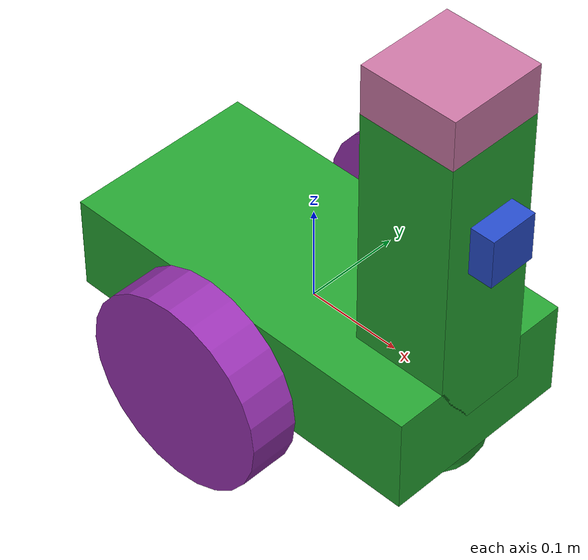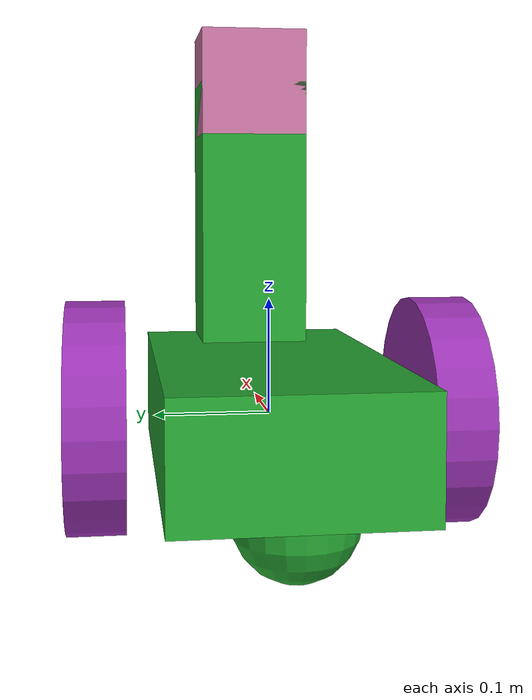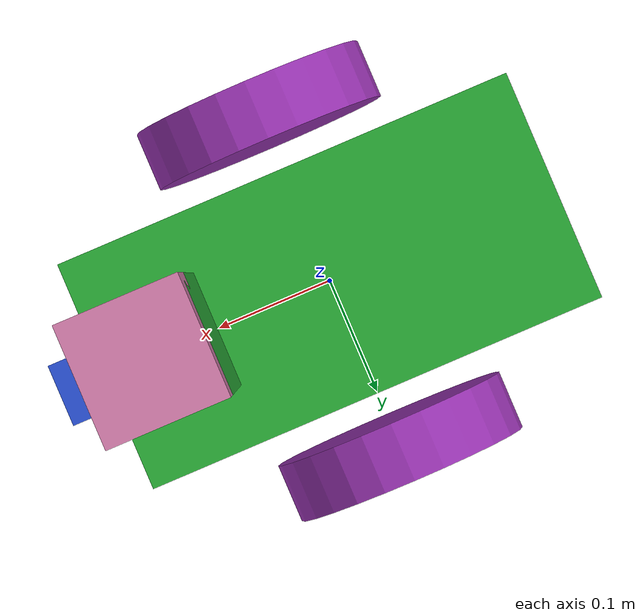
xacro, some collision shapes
<?xml version='1.0'?>

<robot name="weiwei_bot" xmlns:xacro="http://www.ros.org/wiki/xacro">

  <xacro:include filename="$(find weiwei_bot)/urdf/weiwei_bot.gazebo" />

  <link name="robot_footprint"></link>

  <joint name="robot_footprint_joint" type="fixed">
    <origin xyz="0 0 0" rpy="0 0 0" />
    <parent link="robot_footprint"/>
    <child link="chassis" />
  </joint>

  <link name='chassis'>
    <pose>0 0 0.1 0 0 0</pose>

    <inertial>
      <mass value="15.0"/>
      <origin xyz="0.0 0 0" rpy=" 0 0 0"/>
      <inertia
          ixx="0.1" ixy="0" ixz="0"
          iyy="0.1" iyz="0"
          izz="0.1"
      />
    </inertial>

    <collision name='collision'>
      <origin xyz="0 0 0" rpy=" 0 0 0"/>
      <geometry>
        <box size=".4 .2 .1"/>
      </geometry>
    </collision>

    <visual name='chassis_visual'>
      <origin xyz="0 0 0" rpy=" 0 0 0"/>
      <geometry>
        <box size=".4 .2 .1"/>
      </geometry>
    </visual>

    <collision name='back_caster_collision'>
      <origin xyz="-0.15 0 -0.05" rpy=" 0 0 0"/>
      <geometry>
        <sphere radius="0.05"/>
      </geometry>
      <surface>
        <friction>
          <ode>
            <mu>0</mu>
            <mu2>0</mu2>
            <slip1>1.0</slip1>
            <slip2>1.0</slip2>
          </ode>
        </friction>
      </surface>
    </collision>

    <visual name='back_caster_visual'>
      <origin xyz="-0.15 0 -0.05" rpy=" 0 0 0"/>
      <geometry>
        <sphere radius="0.05"/>
      </geometry>
    </visual>

    <collision name='front_caster_collision'>
      <origin xyz="0.15 0 -0.05" rpy=" 0 0 0"/>
      <geometry>
        <sphere radius="0.05"/>
      </geometry>
      <surface>
        <friction>
          <ode>
            <mu>0</mu>
            <mu2>0</mu2>
            <slip1>1.0</slip1>
            <slip2>1.0</slip2>
          </ode>
        </friction>
      </surface>
    </collision>

    <visual name='front_caster_visual'>
      <origin xyz="0.15 0 -0.05" rpy=" 0 0 0"/>
      <geometry>
        <sphere radius="0.05"/>
      </geometry>
    </visual>

  </link>

  <link name='face' type="fixed">
    <pose>0 0 0.1 0 0 0</pose>

    <inertial>
      <mass value="1.0"/>
      <origin xyz="0.0 0 0" rpy=" 0 0 0"/>
      <inertia
          ixx="0.1" ixy="0" ixz="0"
          iyy="0.1" iyz="0"
          izz="0.1"
      />
    </inertial>

    <collision name='face_collision'>
      <origin xyz="0.15 0 0.15" rpy=" 0 0 0"/>
      <geometry>
        <box size=".1 .1 .3"/>
      </geometry>
    </collision>

    <visual name='face_visual'>
      <origin xyz="0.15 0 0.15" rpy=" 0 0 0"/>
      <geometry>
        <box size=".1 .1 .3"/>
      </geometry>
    </visual>
  </link>

  <joint type="continuous" name="face_hinge">
    <origin xyz="0 0 0" rpy="0 0 0"/>
    <child link="face"/>
    <parent link="chassis"/>
    <axis xyz="0 1 0" rpy="0 0 0"/>
    <limit effort="10000" velocity="1000"/>
    <joint_properties damping="1.0" friction="1.0"/>
  </joint>

  <link name="left_wheel">
    <collision name='left_wheel_collision'>
      <origin xyz="0.0 0.0 0.0" rpy=" 0.0 1.5707 1.5707"/>
      <geometry>
        <cylinder radius="0.1" length="0.05"/>
      </geometry>
      <surface>
        <friction>
          <ode>
            <mu>0</mu>
            <mu2>0</mu2>
            <slip1>1.0</slip1>
            <slip2>1.0</slip2>
          </ode>
        </friction>
      </surface>
    </collision>
    <inertial>
      <mass value="5.0"/>
      <origin xyz="0.0 0 0" rpy=" 0 0 0"/>
      <inertia
          ixx="0.1" ixy="0" ixz="0"
          iyy="0.1" iyz="0"
          izz="0.1"
      />
    </inertial>
    <visual name='left_wheel_visual'>
     <origin xyz="0.0 0.0 0.0" rpy=" 0.0 1.5707 1.5707"/>
      <geometry>
        <cylinder radius="0.1" length="0.05"/>
      </geometry>
    </visual>
  </link>

<joint type="continuous" name="left_wheel_hinge">
    <origin xyz="0 0.15 0" rpy="0 0 0"/>
    <child link="left_wheel"/>
    <parent link="chassis"/>
    <axis xyz="0 1 0" rpy="0 0 0"/>
    <limit effort="10000" velocity="1000"/>
    <joint_properties damping="1.0" friction="1.0"/>
  </joint>

  <link name="right_wheel">
    <collision name='right_wheel_collision'>
      <origin xyz="0.0 0.0 0.0" rpy=" 0.0 1.5707 1.5707"/>
      <geometry>
        <cylinder radius="0.1" length="0.05"/>
      </geometry>
      <surface>
        <friction>
          <ode>
            <mu>0</mu>
            <mu2>0</mu2>
            <slip1>1.0</slip1>
            <slip2>1.0</slip2>
          </ode>
        </friction>
      </surface>
    </collision>
    <inertial>
      <mass value="5.0"/>
      <origin xyz="0.0 0.0 0.0" rpy=" 0.0 0.0 0.0"/>
      <inertia
          ixx="0.1" ixy="0" ixz="0"
          iyy="0.1" iyz="0"
          izz="0.1"
      />
    </inertial>
    <visual name='right_wheel_visual'>
      <origin xyz="0.0 0.0 0.0" rpy=" 0.0 1.5707 1.5707"/>
      <geometry>
        <cylinder radius="0.1" length="0.05"/>
      </geometry>
    </visual>
  </link>

  <joint type="continuous" name="right_wheel_hinge">
    <origin xyz="0 -0.15 0" rpy="0 0 0"/>
    <child link="right_wheel"/>
    <parent link="chassis"/>
    <axis xyz="0 1 0" rpy="0 0 0"/>
    <limit effort="10000" velocity="1000"/>
    <joint_properties damping="1.0" friction="1.0"/>
  </joint>

  <link name="camera">
    <collision name='camera_collision'>
      <origin xyz="0.0 0.0 0.0" rpy=" 0.0 0.0 0.0"/>
      <geometry>
        <box size="0.05 0.05 0.05"/>
      </geometry>
      <surface>
        <friction>
          <ode>
            <mu>0</mu>
            <mu2>0</mu2>
            <slip1>1.0</slip1>
            <slip2>1.0</slip2>
          </ode>
        </friction>
      </surface>
    </collision>
    <inertial>
      <mass value="0.1"/>
      <origin xyz="0.0 0.0 0.0" rpy=" 0.0 0.0 0.0"/>
      <inertia
          ixx="1e-6" ixy="0" ixz="0"
          iyy="1e-6" iyz="0"
          izz="1e-6"
      />
    </inertial>
    <visual name='camera_visual'>
      <origin xyz="0.0 0.0 0.0" rpy=" 0.0 0.0 0.0"/>
      <geometry>
        <box size="0.05 0.05 0.05"/>
      </geometry>
    </visual>
  </link>

  <joint type="continuous" name="camera_joint">
    <origin xyz="0.2 0.0 0.2" rpy="0 0 0"/>
    <child link="camera"/>
    <parent link="chassis"/>
    <axis xyz="0 1 0" rpy="0 0 0"/>
    <limit effort="10000" velocity="1000"/>
    <joint_properties damping="1.0" friction="1.0"/>
  </joint>

  <link name="hokuyo">
    <collision name='hokuyo_collision'>
      <origin xyz="0.0 0.0 0.0" rpy=" 0.0 0.0 0.0"/>
      <geometry>
        <box size="0.1 0.1 0.1"/>
      </geometry>
      <surface>
        <friction>
          <ode>
            <mu>0</mu>
            <mu2>0</mu2>
            <slip1>1.0</slip1>
            <slip2>1.0</slip2>
          </ode>
        </friction>
      </surface>
    </collision>
    <inertial>
      <mass value="0.1"/>
      <origin xyz="0.0 0.0 0.0" rpy=" 0.0 0.0 0.0"/>
      <inertia
          ixx="1e-6" ixy="0" ixz="0"
          iyy="1e-6" iyz="0"
          izz="1e-6"
      />
    </inertial>
    <visual name='hokuyo_visual'>
      <origin xyz="0.0 0.0 0.0" rpy=" 0.0 0.0 0.0"/>
      <geometry>
        <mesh filename="package://udacity_bot/meshes/hokuyo.dae"/>
      </geometry>
   </visual>
  </link>

  <joint type="continuous" name="hokuyo_joint">
    <origin xyz="0.15 0.0 0.3" rpy="0 0 0"/>
    <child link="hokuyo"/>
    <parent link="chassis"/>
    <axis xyz="0 1 0" rpy="0 0 0"/>
    <limit effort="10000" velocity="1000"/>
    <joint_properties damping="1.0" friction="1.0"/>
  </joint>

</robot>
